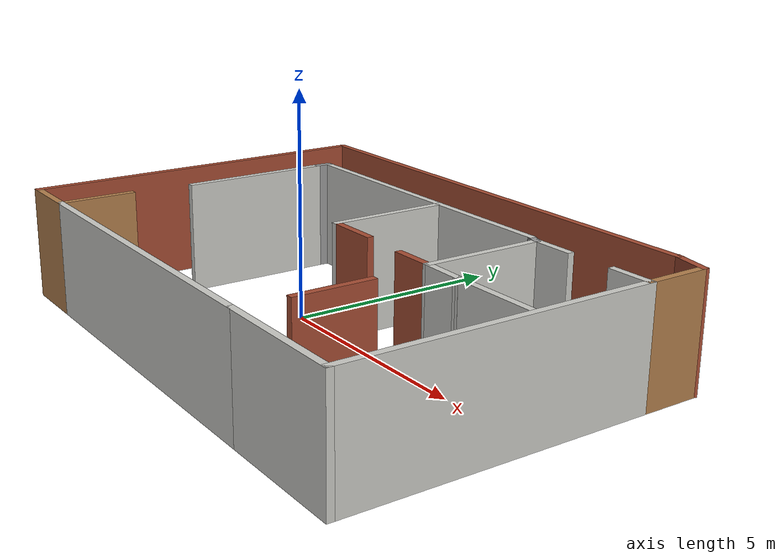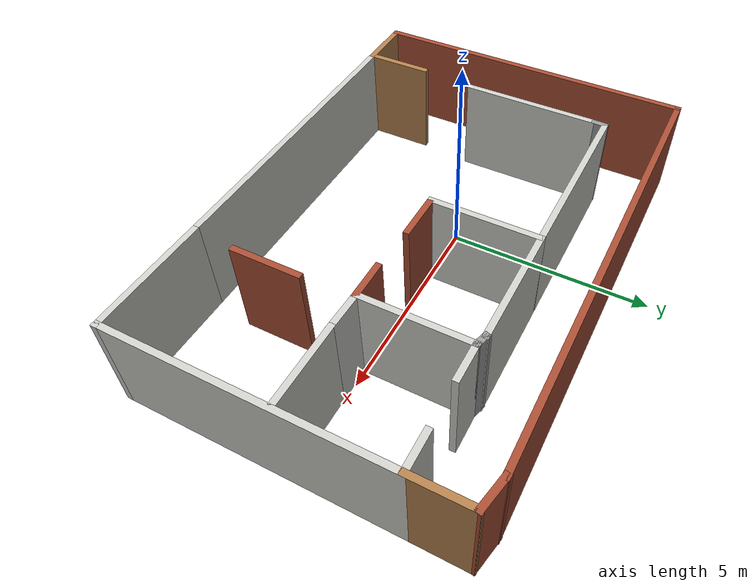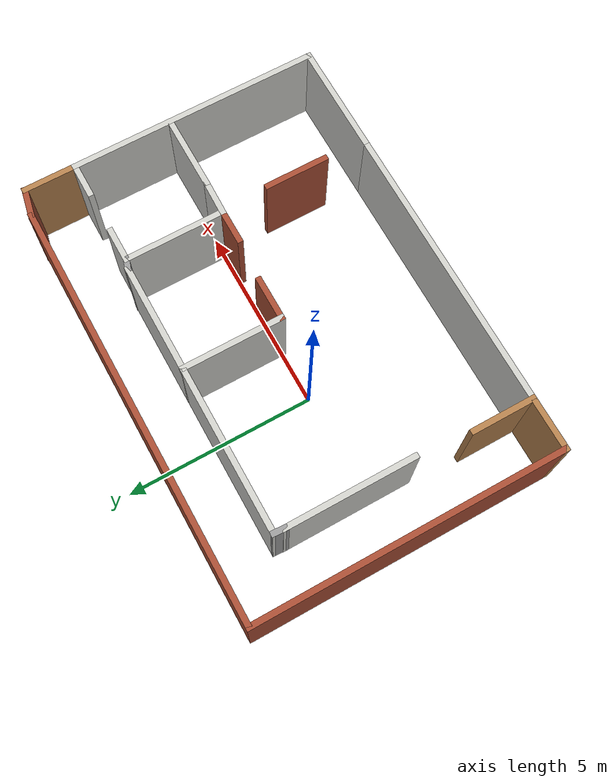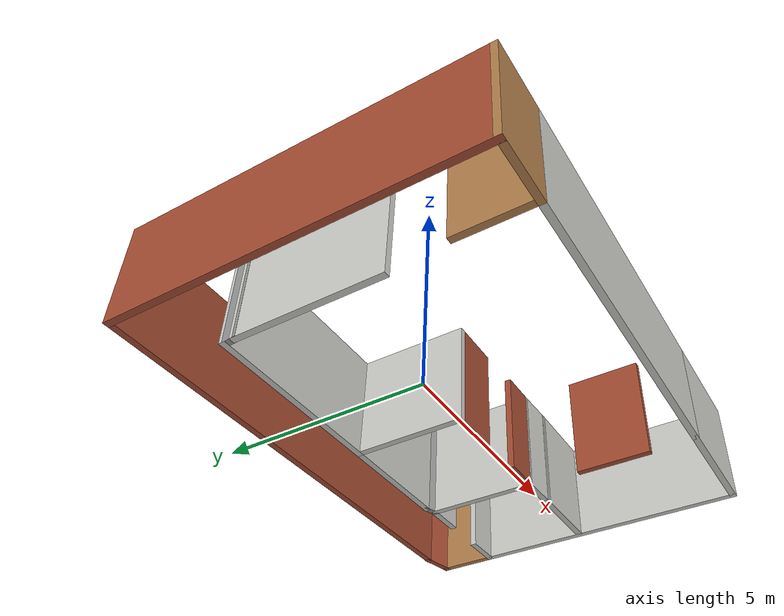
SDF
<?xml version='1.0'?>
<sdf version='1.6'>
  <model name='office'>
    <pose frame=''>1.48353 -0.028397 0 0 -0 0</pose>
    <link name='Wall_1'>
      <collision name='Wall_1_Collision'>
        <geometry>
          <box>
            <size>3.5 0.15 2.5</size>
          </box>
        </geometry>
        <pose frame=''>0 0 1.25 0 -0 0</pose>
      </collision>
      <visual name='Wall_1_Visual'>
        <pose frame=''>0 0 1.25 0 -0 0</pose>
        <geometry>
          <box>
            <size>3.5 0.15 2.5</size>
          </box>
        </geometry>
        <material>
          <script>
            <uri>file://media/materials/scripts/gazebo.material</uri>
            <name>Gazebo/CeilingTiled</name>
          </script>
          <ambient>1 1 1 1</ambient>
        </material>
        <meta>
          <layer>0</layer>
        </meta>
      </visual>
      <pose frame=''>-4.42238 0.673558 0 0 -0 -1.5708</pose>
    </link>
    <link name='Wall_13'>
      <collision name='Wall_13_Collision'>
        <geometry>
          <box>
            <size>3 0.15 2.5</size>
          </box>
        </geometry>
        <pose frame=''>0 0 1.25 0 -0 0</pose>
      </collision>
      <visual name='Wall_13_Visual'>
        <pose frame=''>0 0 1.25 0 -0 0</pose>
        <geometry>
          <box>
            <size>3 0.15 2.5</size>
          </box>
        </geometry>
        <material>
          <script>
            <uri>file://media/materials/scripts/gazebo.material</uri>
            <name>Gazebo/CeilingTiled</name>
          </script>
          <ambient>1 1 1 1</ambient>
        </material>
        <meta>
          <layer>0</layer>
        </meta>
      </visual>
      <pose frame=''>1.36942 2.61775 0 0 -0 0</pose>
    </link>
    <link name='Wall_30'>
      <collision name='Wall_30_Collision'>
        <geometry>
          <box>
            <size>2.75 0.15 2.5</size>
          </box>
        </geometry>
        <pose frame=''>0 0 1.25 0 -0 0</pose>
      </collision>
      <visual name='Wall_30_Visual'>
        <pose frame=''>0 0 1.25 0 -0 0</pose>
        <geometry>
          <box>
            <size>2.75 0.15 2.5</size>
          </box>
        </geometry>
        <material>
          <script>
            <uri>file://media/materials/scripts/gazebo.material</uri>
            <name>Gazebo/CeilingTiled</name>
          </script>
          <ambient>1 1 1 1</ambient>
        </material>
        <meta>
          <layer>0</layer>
        </meta>
      </visual>
      <pose frame=''>-0.055579 1.31775 0 0 -0 -1.5708</pose>
    </link>
    <link name='Wall_31'>
      <collision name='Wall_31_Collision'>
        <geometry>
          <box>
            <size>1.25 0.15 2.5</size>
          </box>
        </geometry>
        <pose frame=''>0 0 1.25 0 -0 0</pose>
      </collision>
      <visual name='Wall_31_Visual'>
        <pose frame=''>0 0 1.25 0 -0 0</pose>
        <geometry>
          <box>
            <size>1.25 0.15 2.5</size>
          </box>
        </geometry>
        <material>
          <script>
            <uri>file://media/materials/scripts/gazebo.material</uri>
            <name>Gazebo/Bricks</name>
          </script>
          <ambient>1 1 1 1</ambient>
        </material>
        <meta>
          <layer>0</layer>
        </meta>
      </visual>
      <pose frame=''>0.494421 0.017751 0 0 -0 0</pose>
    </link>
    <link name='Wall_33'>
      <collision name='Wall_33_Collision'>
        <geometry>
          <box>
            <size>1 0.15 2.5</size>
          </box>
        </geometry>
        <pose frame=''>0 0 1.25 0 -0 0</pose>
      </collision>
      <visual name='Wall_33_Visual'>
        <pose frame=''>0 0 1.25 0 -0 0</pose>
        <geometry>
          <box>
            <size>1 0.15 2.5</size>
          </box>
        </geometry>
        <material>
          <script>
            <uri>file://media/materials/scripts/gazebo.material</uri>
            <name>Gazebo/Bricks</name>
          </script>
          <ambient>1 1 1 1</ambient>
        </material>
        <meta>
          <layer>0</layer>
        </meta>
      </visual>
      <pose frame=''>2.61797 -0.057025 0 0 -0 0</pose>
    </link>
    <link name='Wall_34'>
      <collision name='Wall_34_Collision'>
        <geometry>
          <box>
            <size>2.75 0.15 2.5</size>
          </box>
        </geometry>
        <pose frame=''>0 0 1.25 0 -0 0</pose>
      </collision>
      <visual name='Wall_34_Visual'>
        <pose frame=''>0 0 1.25 0 -0 0</pose>
        <geometry>
          <box>
            <size>2.75 0.15 2.5</size>
          </box>
        </geometry>
        <material>
          <script>
            <uri>file://media/materials/scripts/gazebo.material</uri>
            <name>Gazebo/CeilingTiled</name>
          </script>
          <ambient>1 1 1 1</ambient>
        </material>
        <meta>
          <layer>0</layer>
        </meta>
      </visual>
      <pose frame=''>3.04298 1.24297 0 0 -0 1.5708</pose>
    </link>
    <link name='Wall_35'>
      <collision name='Wall_35_Collision'>
        <geometry>
          <box>
            <size>0.15 0.15 2.5</size>
          </box>
        </geometry>
        <pose frame=''>0 0 1.25 0 -0 0</pose>
      </collision>
      <visual name='Wall_35_Visual'>
        <pose frame=''>0 0 1.25 0 -0 0</pose>
        <geometry>
          <box>
            <size>0.15 0.15 2.5</size>
          </box>
        </geometry>
        <material>
          <script>
            <uri>file://media/materials/scripts/gazebo.material</uri>
            <name>Gazebo/Grey</name>
          </script>
          <ambient>1 1 1 1</ambient>
        </material>
        <meta>
          <layer>0</layer>
        </meta>
      </visual>
      <pose frame=''>3.04298 2.54298 0 0 -0 0</pose>
    </link>
    <link name='Wall_36'>
      <collision name='Wall_36_Collision'>
        <geometry>
          <box>
            <size>0.409558 0.15 2.5</size>
          </box>
        </geometry>
        <pose frame=''>0 0 1.25 0 -0 0</pose>
      </collision>
      <visual name='Wall_36_Visual'>
        <pose frame=''>0 0 1.25 0 -0 0</pose>
        <geometry>
          <box>
            <size>0.409558 0.15 2.5</size>
          </box>
        </geometry>
        <material>
          <script>
            <uri>file://media/materials/scripts/gazebo.material</uri>
            <name>Gazebo/Grey</name>
          </script>
          <ambient>1 1 1 1</ambient>
        </material>
        <meta>
          <layer>0</layer>
        </meta>
      </visual>
      <pose frame=''>2.9187 2.58036 0 0 -0 2.84936</pose>
    </link>
    <link name='Wall_52'>
      <collision name='Wall_52_Collision'>
        <geometry>
          <box>
            <size>6.75 0.15 2.5</size>
          </box>
        </geometry>
        <pose frame=''>0 0 1.25 0 -0 0</pose>
      </collision>
      <visual name='Wall_52_Visual'>
        <pose frame=''>0 0 1.25 0 -0 0</pose>
        <geometry>
          <box>
            <size>6.75 0.15 2.5</size>
          </box>
        </geometry>
        <material>
          <script>
            <uri>file://media/materials/scripts/gazebo.material</uri>
            <name>Gazebo/CeilingTiled</name>
          </script>
          <ambient>1 1 1 1</ambient>
        </material>
        <meta>
          <layer>0</layer>
        </meta>
      </visual>
      <pose frame=''>5.89298 -0.757025 0 0 -0 -1.5708</pose>
    </link>
    <link name='Wall_53'>
      <collision name='Wall_53_Collision'>
        <geometry>
          <box>
            <size>3 0.15 2.5</size>
          </box>
        </geometry>
        <pose frame=''>0 0 1.25 0 -0 0</pose>
      </collision>
      <visual name='Wall_53_Visual'>
        <pose frame=''>0 0 1.25 0 -0 0</pose>
        <geometry>
          <box>
            <size>3 0.15 2.5</size>
          </box>
        </geometry>
        <material>
          <script>
            <uri>file://media/materials/scripts/gazebo.material</uri>
            <name>Gazebo/CeilingTiled</name>
          </script>
          <ambient>1 1 1 1</ambient>
        </material>
        <meta>
          <layer>0</layer>
        </meta>
      </visual>
      <pose frame=''>4.46798 -4.05703 0 0 -0 3.14159</pose>
    </link>
    <link name='Wall_56'>
      <collision name='Wall_56_Collision'>
        <geometry>
          <box>
            <size>2 0.15 2.5</size>
          </box>
        </geometry>
        <pose frame=''>0 0 1.25 0 -0 0</pose>
      </collision>
      <visual name='Wall_56_Visual'>
        <pose frame=''>0 0 1.25 0 -0 0</pose>
        <geometry>
          <box>
            <size>2 0.15 2.5</size>
          </box>
        </geometry>
        <material>
          <script>
            <uri>file://media/materials/scripts/gazebo.material</uri>
            <name>Gazebo/CeilingTiled</name>
          </script>
          <ambient>1 1 1 1</ambient>
        </material>
        <meta>
          <layer>0</layer>
        </meta>
      </visual>
      <pose frame=''>4.85277 -0.080155 0 0 -0 0</pose>
    </link>
    <link name='Wall_58'>
      <collision name='Wall_58_Collision'>
        <geometry>
          <box>
            <size>7.75 0.15 2.5</size>
          </box>
        </geometry>
        <pose frame=''>0 0 1.25 0 -0 0</pose>
      </collision>
      <visual name='Wall_58_Visual'>
        <pose frame=''>0 0 1.25 0 -0 0</pose>
        <geometry>
          <box>
            <size>7.75 0.15 2.5</size>
          </box>
        </geometry>
        <material>
          <script>
            <uri>file://media/materials/scripts/gazebo.material</uri>
            <name>Gazebo/CeilingTiled</name>
          </script>
          <ambient>1 1 1 1</ambient>
        </material>
        <meta>
          <layer>0</layer>
        </meta>
      </visual>
      <pose frame=''>-0.757025 -4.05703 0 0 -0 3.14159</pose>
    </link>
    <link name='Wall_60'>
      <collision name='Wall_60_Collision'>
        <geometry>
          <box>
            <size>4.5 0.15 2.5</size>
          </box>
        </geometry>
        <pose frame=''>0 0 1.25 0 -0 0</pose>
      </collision>
      <visual name='Wall_60_Visual'>
        <pose frame=''>0 0 1.25 0 -0 0</pose>
        <geometry>
          <box>
            <size>4.5 0.15 2.5</size>
          </box>
        </geometry>
        <material>
          <script>
            <uri>file://media/materials/scripts/gazebo.material</uri>
            <name>Gazebo/CeilingTiled</name>
          </script>
          <ambient>1 1 1 1</ambient>
        </material>
        <meta>
          <layer>0</layer>
        </meta>
      </visual>
      <pose frame=''>-2.23058 2.61775 0 0 -0 3.14159</pose>
    </link>
    <link name='Wall_61'>
      <collision name='Wall_61_Collision'>
        <geometry>
          <box>
            <size>0.419716 0.15 2.5</size>
          </box>
        </geometry>
        <pose frame=''>0 0 1.25 0 -0 0</pose>
      </collision>
      <visual name='Wall_61_Visual'>
        <pose frame=''>0 0 1.25 0 -0 0</pose>
        <geometry>
          <box>
            <size>0.419716 0.15 2.5</size>
          </box>
        </geometry>
        <material>
          <script>
            <uri>file://media/materials/scripts/gazebo.material</uri>
            <name>Gazebo/Grey</name>
          </script>
          <ambient>1 1 1 1</ambient>
        </material>
        <meta>
          <layer>0</layer>
        </meta>
      </visual>
      <pose frame=''>-4.41398 2.48316 0 0 -0 -1.63312</pose>
    </link>
    <link name='Wall_64'>
      <collision name='Wall_64_Collision'>
        <geometry>
          <box>
            <size>1.75 0.15 2.5</size>
          </box>
        </geometry>
        <pose frame=''>0 0 1.25 0 -0 0</pose>
      </collision>
      <visual name='Wall_64_Visual'>
        <pose frame=''>0 0 1.25 0 -0 0</pose>
        <geometry>
          <box>
            <size>1.75 0.15 2.5</size>
          </box>
        </geometry>
        <material>
          <script>
            <uri>file://media/materials/scripts/gazebo.material</uri>
            <name>Gazebo/Wood</name>
          </script>
          <ambient>1 1 1 1</ambient>
        </material>
        <meta>
          <layer>0</layer>
        </meta>
      </visual>
      <pose frame=''>-4.55703 -3.25703 0 0 -0 1.5708</pose>
    </link>
    <link name='Wall_66'>
      <collision name='Wall_66_Collision'>
        <geometry>
          <box>
            <size>1.5 0.15 2.5</size>
          </box>
        </geometry>
        <pose frame=''>0 0 1.25 0 -0 0</pose>
      </collision>
      <visual name='Wall_66_Visual'>
        <pose frame=''>0 0 1.25 0 -0 0</pose>
        <geometry>
          <box>
            <size>1.5 0.15 2.5</size>
          </box>
        </geometry>
        <material>
          <script>
            <uri>file://media/materials/scripts/gazebo.material</uri>
            <name>Gazebo/Wood</name>
          </script>
          <ambient>1 1 1 1</ambient>
        </material>
        <meta>
          <layer>0</layer>
        </meta>
      </visual>
      <pose frame=''>-5.23203 -4.05703 0 0 -0 3.14159</pose>
    </link>
    <link name='Wall_67'>
      <collision name='Wall_67_Collision'>
        <geometry>
          <box>
            <size>8.25 0.15 2.5</size>
          </box>
        </geometry>
        <pose frame=''>0 0 1.25 0 -0 0</pose>
      </collision>
      <visual name='Wall_67_Visual'>
        <pose frame=''>0 0 1.25 0 -0 0</pose>
        <geometry>
          <box>
            <size>8.25 0.15 2.5</size>
          </box>
        </geometry>
        <material>
          <script>
            <uri>file://media/materials/scripts/gazebo.material</uri>
            <name>Gazebo/Bricks</name>
          </script>
          <ambient>1 1 1 1</ambient>
        </material>
        <meta>
          <layer>0</layer>
        </meta>
      </visual>
      <pose frame=''>-5.90702 -0.007025 0 0 -0 1.5708</pose>
    </link>
    <link name='Wall_71'>
      <collision name='Wall_71_Collision'>
        <geometry>
          <box>
            <size>1.5 0.15 2.5</size>
          </box>
        </geometry>
        <pose frame=''>0 0 1.25 0 -0 0</pose>
      </collision>
      <visual name='Wall_71_Visual'>
        <pose frame=''>0 0 1.25 0 -0 0</pose>
        <geometry>
          <box>
            <size>1.5 0.15 2.5</size>
          </box>
        </geometry>
        <material>
          <script>
            <uri>file://media/materials/scripts/gazebo.material</uri>
            <name>Gazebo/Wood</name>
          </script>
          <ambient>1 1 1 1</ambient>
        </material>
        <meta>
          <layer>0</layer>
        </meta>
      </visual>
      <pose frame=''>5.89298 3.21798 0 0 -0 1.5708</pose>
    </link>
    <link name='Wall_73'>
      <collision name='Wall_73_Collision'>
        <geometry>
          <box>
            <size>11.25 0.15 2.5</size>
          </box>
        </geometry>
        <pose frame=''>0 0 1.25 0 -0 0</pose>
      </collision>
      <visual name='Wall_73_Visual'>
        <pose frame=''>0 0 1.25 0 -0 0</pose>
        <geometry>
          <box>
            <size>11.25 0.15 2.5</size>
          </box>
        </geometry>
        <material>
          <script>
            <uri>file://media/materials/scripts/gazebo.material</uri>
            <name>Gazebo/Bricks</name>
          </script>
          <ambient>1 1 1 1</ambient>
        </material>
        <meta>
          <layer>0</layer>
        </meta>
      </visual>
      <pose frame=''>-0.357025 4.04298 0 0 -0 0</pose>
    </link>
    <link name='Wall_74'>
      <collision name='Wall_74_Collision'>
        <geometry>
          <box>
            <size>0.865891 0.15 2.5</size>
          </box>
        </geometry>
        <pose frame=''>0 0 1.25 0 -0 0</pose>
      </collision>
      <visual name='Wall_74_Visual'>
        <pose frame=''>0 0 1.25 0 -0 0</pose>
        <geometry>
          <box>
            <size>0.865891 0.15 2.5</size>
          </box>
        </geometry>
        <material>
          <script>
            <uri>file://media/materials/scripts/gazebo.material</uri>
            <name>Gazebo/Bricks</name>
          </script>
          <ambient>1 1 1 1</ambient>
        </material>
        <meta>
          <layer>0</layer>
        </meta>
      </visual>
      <pose frame=''>5.54298 3.96798 0 0 -0 -0.211093</pose>
    </link>
    <link name='Wall_76'>
      <collision name='Wall_76_Collision'>
        <geometry>
          <box>
            <size>1.0351 0.15 2.5</size>
          </box>
        </geometry>
        <pose frame=''>0 0 1.25 0 -0 0</pose>
      </collision>
      <visual name='Wall_76_Visual'>
        <pose frame=''>0 0 1.25 0 -0 0</pose>
        <geometry>
          <box>
            <size>1.0351 0.15 2.5</size>
          </box>
        </geometry>
        <material>
          <script>
            <uri>file://media/materials/scripts/gazebo.material</uri>
            <name>Gazebo/CeilingTiled</name>
          </script>
          <ambient>1 1 1 1</ambient>
        </material>
        <meta>
          <layer>0</layer>
        </meta>
      </visual>
      <pose frame=''>3.48537 -0.06859 0 0 -0 3.11546</pose>
    </link>
    <link name='Wall_78'>
      <collision name='Wall_78_Collision'>
        <geometry>
          <box>
            <size>1 0.15 2.5</size>
          </box>
        </geometry>
        <pose frame=''>0 0 1.25 0 -0 0</pose>
      </collision>
      <visual name='Wall_78_Visual'>
        <pose frame=''>0 0 1.25 0 -0 0</pose>
        <geometry>
          <box>
            <size>1 0.15 2.5</size>
          </box>
        </geometry>
        <material>
          <script>
            <uri>file://media/materials/scripts/gazebo.material</uri>
            <name>Gazebo/CeilingTiled</name>
          </script>
          <ambient>1 1 1 1</ambient>
        </material>
        <meta>
          <layer>0</layer>
        </meta>
      </visual>
      <pose frame=''>3.46798 2.54298 0 0 -0 0</pose>
    </link>
    <link name='Wall_80'>
      <collision name='Wall_80_Collision'>
        <geometry>
          <box>
            <size>1 0.15 2.5</size>
          </box>
        </geometry>
        <pose frame=''>0 0 1.25 0 -0 0</pose>
      </collision>
      <visual name='Wall_80_Visual'>
        <pose frame=''>0 0 1.25 0 -0 0</pose>
        <geometry>
          <box>
            <size>1 0.15 2.5</size>
          </box>
        </geometry>
        <material>
          <script>
            <uri>file://media/materials/scripts/gazebo.material</uri>
            <name>Gazebo/CeilingTiled</name>
          </script>
          <ambient>1 1 1 1</ambient>
        </material>
        <meta>
          <layer>0</layer>
        </meta>
      </visual>
      <pose frame=''>5.46798 2.54298 0 0 -0 3.14159</pose>
    </link>
    <link name='Wall_83'>
      <collision name='Wall_83_Collision'>
        <geometry>
          <box>
            <size>1.75 0.15 2.5</size>
          </box>
        </geometry>
        <pose frame=''>0 0 1.25 0 -0 0</pose>
      </collision>
      <visual name='Wall_83_Visual'>
        <pose frame=''>0 0 1.25 0 -0 0</pose>
        <geometry>
          <box>
            <size>1.75 0.15 2.5</size>
          </box>
        </geometry>
        <material>
          <script>
            <uri>file://media/materials/scripts/gazebo.material</uri>
            <name>Gazebo/Bricks</name>
          </script>
          <ambient>1 1 1 1</ambient>
        </material>
        <meta>
          <layer>0</layer>
        </meta>
      </visual>
      <pose frame=''>3.12563 -2.15058 0 0 -0 -1.5708</pose>
    </link>
    <static>1</static>
  </model>
</sdf>
